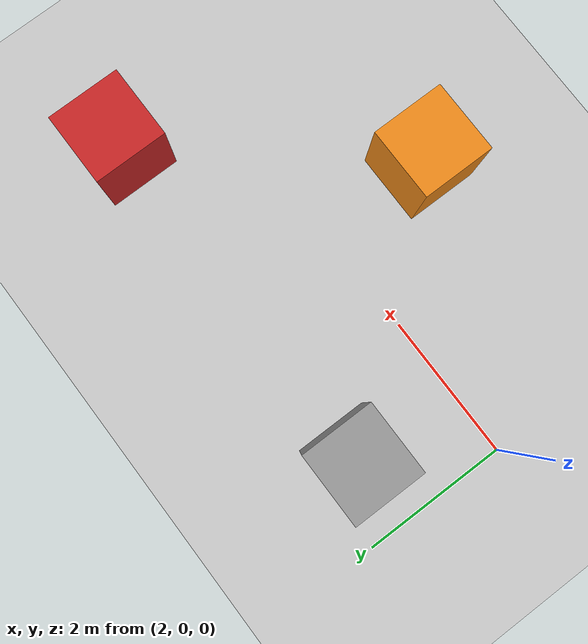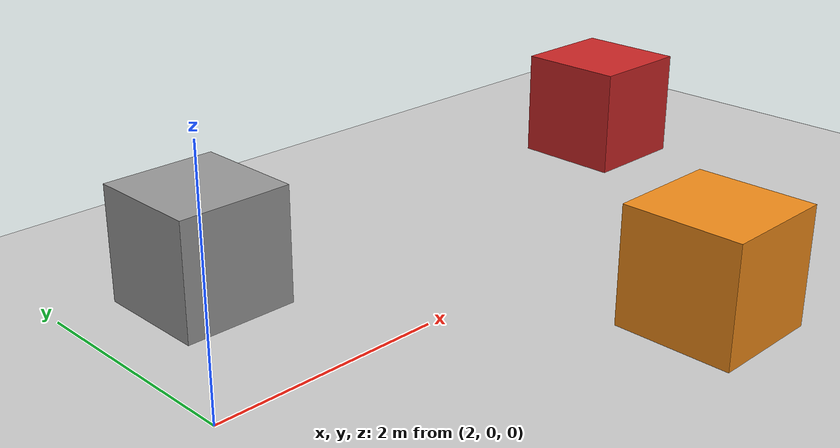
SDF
<?xml version="1.0" ?>
<sdf version="1.6">
  <world name="default">
    <!-- Publish all model poses: ros2 topic echo /model_states -->
    <plugin name="gazebo_ros_state" filename="libgazebo_ros_state.so">
      <ros>
        <remapping>model_states:=model_states</remapping>
        <remapping>link_states:=link_states</remapping>
      </ros>
      <update_rate>10.0</update_rate>
    </plugin>

    <physics type="ode">
      <max_step_size>0.002</max_step_size>
      <real_time_update_rate>500</real_time_update_rate>
    </physics>
    <include>
      <uri>model://sun</uri>
    </include>
    <include>
      <uri>model://ground_plane</uri>
    </include>

    <!-- 3 obstacles: staggered along +x (~2.5 m apart), y alternates for weave-through -->
    <model name="obstacle_10_10_10_1">
      <static>true</static>
      <pose>3.0 1.5 0.5 0 0 0</pose>
      <link name="link">
        <collision name="collision">
          <geometry>
            <box>
              <size>1.0 1.0 1.0</size>
            </box>
          </geometry>
        </collision>
        <visual name="visual">
          <geometry>
            <box>
              <size>1.0 1.0 1.0</size>
            </box>
          </geometry>
          <material>
            <script>
              <uri>file://media/materials/scripts/gazebo.material</uri>
              <name>Gazebo/Grey</name>
            </script>
          </material>
        </visual>
      </link>
    </model>

    <model name="obstacle_10_10_10_2">
      <static>true</static>
      <pose>5.5 -1.5 0.5 0 0 0</pose>
      <link name="link">
        <collision name="collision">
          <geometry>
            <box>
              <size>1.0 1.0 1.0</size>
            </box>
          </geometry>
        </collision>
        <visual name="visual">
          <geometry>
            <box>
              <size>1.0 1.0 1.0</size>
            </box>
          </geometry>
          <material>
            <script>
              <uri>file://media/materials/scripts/gazebo.material</uri>
              <name>Gazebo/Orange</name>
            </script>
          </material>
        </visual>
      </link>
    </model>

    <model name="obstacle_10_10_10_3">
      <static>true</static>
      <pose>8.0 1.5 0.5 0 0 0</pose>
      <link name="link">
        <collision name="collision">
          <geometry>
            <box>
              <size>1.0 1.0 1.0</size>
            </box>
          </geometry>
        </collision>
        <visual name="visual">
          <geometry>
            <box>
              <size>1.0 1.0 1.0</size>
            </box>
          </geometry>
          <material>
            <script>
              <uri>file://media/materials/scripts/gazebo.material</uri>
              <name>Gazebo/Red</name>
            </script>
          </material>
        </visual>
      </link>
    </model>

  </world>
</sdf>
